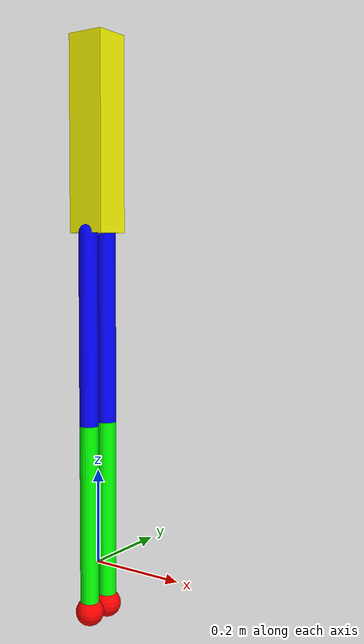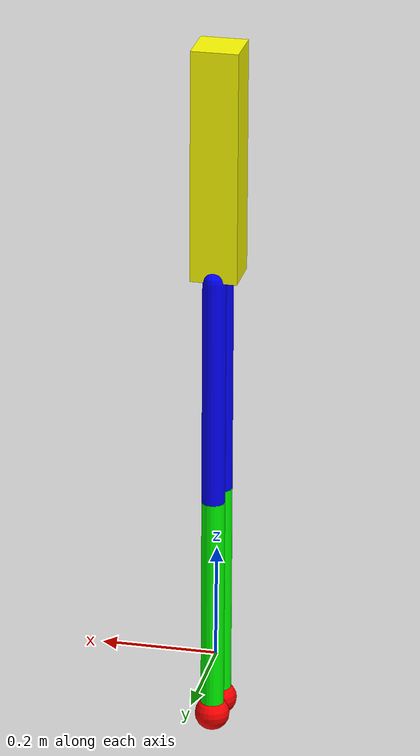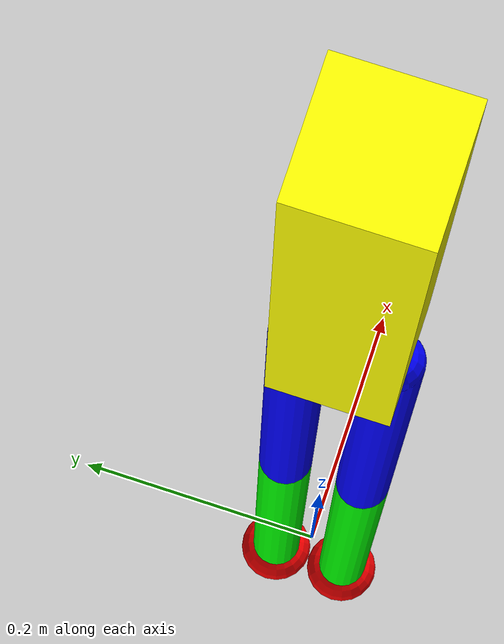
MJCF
<mujoco model="rabbit">
    <compiler angle="radian" autolimits="true"/>

    <default>
        <default class="rabbit">
            <geom type="capsule"/>
        </default>
        <motor ctrlrange="-100 100"/>
        <joint armature="0.001" damping="0.001"/>
        <default class="virtual_joint">
            <joint damping="0" armature="0" frictionloss="0"/>
        </default>
    </default>

    <keyframe>
        <key name="0" qpos="0 0 0 -0.6 1 0 0.8" />
    </keyframe>

    <worldbody>
        <body name="base" pos="0 0 0.9">
            <joint name="x_joint" type="slide" axis="1 0 0" range="-100 100" class="virtual_joint"/>
            <joint name="z_joint" type="slide" axis="0 0 1" range="-100 100" class="virtual_joint"/>
            <joint name="pitch_joint" type="hinge" axis="0 1 0" class="virtual_joint"/>
            <site name="imu" pos="0 0 -0.2"/>

            <body name="torso">
                <inertial
                    pos="0 0 -0.2"
                    mass="10"
                    diaginertia="0.01 0.01 0.001"
                />
                <geom name="torso_geom" type="box" size="0.04 0.04 0.2" density="0" rgba="1 1 0 1"/>

                <!-- right leg -->
                <body name="right_hip" pos="0 -0.03 -0.2">
                    <inertial
                        pos="0 0 -0.2"
                        mass="1"
                        diaginertia="0.005 0.005 0.001"
                    />
                    <joint name="right_hip_ry" type="hinge" axis="0 1 0" range="-2 2"/>
                    <geom name="right_thigh_geom" type="capsule" density="0" fromto="0 0 0 0 0 -0.4" size="0.02" rgba="0 0 1 1"/>
                    <body name="right_knee" pos="0 0 -0.4">
                        <inertial
                            pos="0 0 -0.2"
                            mass="0.5"
                            diaginertia="0.005 0.005 0.001"
                        />
                        <joint name="right_knee_ry" type="hinge" axis="0 1 0" range="0 3"/>
                        <geom name="right_shin_geom" type="capsule" density="0" fromto="0 0 0 0 0 -0.4" size="0.02" rgba="0 1 0 1"/>
                        <site name="right_foot" type="sphere" pos="0 0 -0.4" size="0.03" rgba="1 0 0 1"/>
                    </body>
                </body>

                <!-- left leg -->
                <body name="left_hip" pos="0 0.03 -0.2">
                    <inertial
                        pos="0 0 -0.2"
                        mass="1"
                        diaginertia="0.005 0.005 0.001"
                    />
                    <joint name="left_hip_ry" type="hinge" axis="0 1 0" range="-2 2"/>
                    <geom name="left_thigh_geom" type="capsule" density="0" fromto="0 0 0 0 0 -0.4" size="0.02" rgba="0 0 1 1"/>
                    <body name="left_knee" pos="0 0 -0.4">
                        <inertial
                            pos="0 0 -0.2"
                            mass="0.5"
                            diaginertia="0.005 0.005 0.001"
                        />
                        <joint name="left_knee_ry" type="hinge" axis="0 1 0" range="0 3"/>
                        <geom name="left_shin_geom" type="capsule" density="0" fromto="0 0 0 0 0 -0.4" size="0.02" rgba="0 1 0 1"/>
                        <site name="left_foot" type="sphere" pos="0 0 -0.4" size="0.03" rgba="1 0 0 1"/>
                    </body>
                </body>
            </body>
        </body>
    </worldbody>

    <actuator>
        <motor name = "right_hip_ry_motor" class="rabbit" joint="right_hip_ry"/>
        <motor name = "right_knee_ry_motor" class="rabbit" joint="right_knee_ry"/>
        <motor name = "left_hip_ry_motor" class="rabbit" joint="left_hip_ry"/>
        <motor name = "left_knee_ry_motor" class="rabbit" joint="left_knee_ry"/>
    </actuator>

    <sensor>
    <!-- define 6 groups in this order
        joint pos, vel, actuator force (joint torque) for each joint-->
        <jointpos name="right_hip_pos" joint="right_hip_ry"/>
        <jointpos name="right_knee_pos" joint="right_knee_ry"/>
        <jointpos name="left_hip_pos" joint="left_hip_ry"/>
        <jointpos name="left_knee_pos" joint="left_knee_ry"/>

        <jointvel name="right_hip_vel" joint="right_hip_ry"/>
        <jointvel name="right_knee_vel" joint="right_knee_ry"/>
        <jointvel name="left_hip_vel" joint="left_hip_ry"/>
        <jointvel name="left_knee_vel" joint="left_knee_ry"/>

        <jointactuatorfrc name="right_hip_tau" joint="right_hip_ry"/>
        <jointactuatorfrc name="right_knee_tau" joint="right_knee_ry"/>
        <jointactuatorfrc name="left_hip_tau" joint="left_hip_ry"/>
        <jointactuatorfrc name="left_knee_tau" joint="left_knee_ry"/>
    <!-- need to link below to a site, imu is at CoM-->
        <framequat name="imu_quat" objtype="site" objname="imu" noise="0.01"/>
        <gyro name="imu_gyro" site="imu" noise="0.01"/>
        <accelerometer name="imu_acc" site="imu" noise="0.01"/>

        <framepos name="frame_pos" objtype="site" objname="imu" />
        <framelinvel name="frame_vel" objtype="site" objname="imu" />

        <touch name="foot_force_R" site="right_foot"/>
        <touch name="foot_force_L" site="left_foot"/>
    </sensor>
</mujoco>
